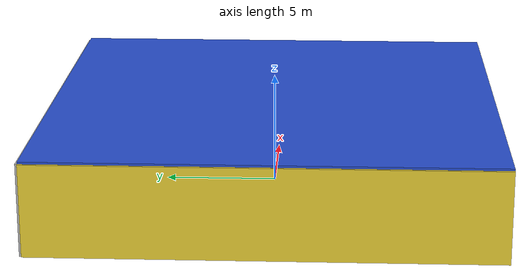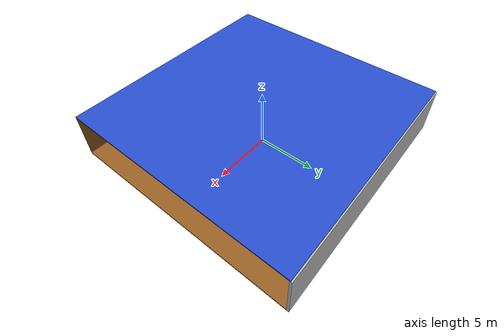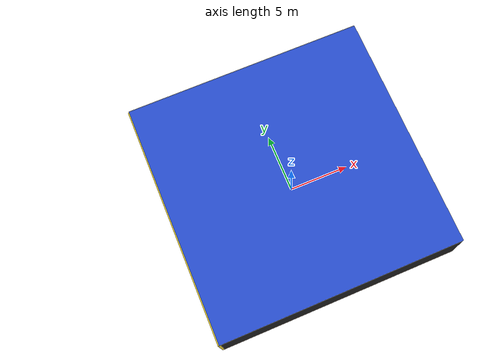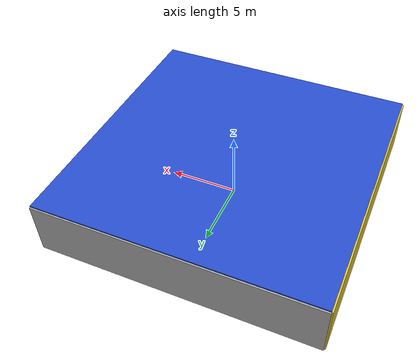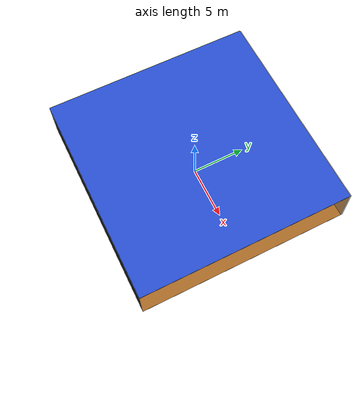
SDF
<sdf version="1.4">
 <world name="default">
  <physics type="ode">
   <max_step_size>0.001</max_step_size>
   <real_time_factor>1</real_time_factor>
   <real_time_update_rate>1000</real_time_update_rate>
   <gravity>0 0 -9.8</gravity>
  </physics>
  <scene><ambient>0.4 0.4 0.4 1</ambient><background>0.7 0.7 0.7 1</background><shadows>1</shadows></scene>
  <model name="Surrounding">
   <static>1</static>
   <link name="Ceiling">
    <collision name="Ceiling_Collision"><geometry><box><size>20 20 0.1</size></box></geometry></collision>
    <visual name="Ceiling_Visual">
     <geometry><box><size>20 20 0.1</size></box></geometry>
     <material>
      <script><uri>file://media/materials/scripts/gazebo.material</uri><name>Gazebo/BlueGlow</name></script>
     </material>
    </visual>
    <pose>0 0 4.05 0 0 0</pose>
   </link>
   <link name="Wall_South">
    <collision name="Wall_South_Collision">
     <geometry><box><size>20 0 4</size></box></geometry>
     <pose>0 0 2 0 -0 0</pose>
    </collision>
    <visual name="Wall_South_Visual">
     <pose>0 0 2 0 -0 0</pose>
     <geometry><box><size>20 0 4</size></box></geometry>
     <material>
      <script><uri>file://media/materials/scripts/gazebo.material</uri><name>Gazebo/FlatBlack</name></script>
     </material>
    </visual>
    <velocity_decay><linear>0</linear><angular>0</angular></velocity_decay>
    <pose>0 -10 0 0 -0 0</pose>
   </link>
   <link name="Wall_East">
    <collision name="Wall_21_Collision">
     <geometry><box><size>20 0 4</size></box></geometry>
     <pose>0 0 2 0 -0 0</pose>
    </collision>
    <visual name="Wall_21_Visual">
     <pose>0 0 2 0 -0 0</pose>
     <geometry><box><size>20 0 4</size></box></geometry>
     <material>
      <script>
       <uri>file://media/materials/scripts/gazebo.material</uri>
       <name>Gazebo/OrangeTransparent</name>
      </script>
     </material>
    </visual>
    <velocity_decay><linear>0</linear><angular>0</angular></velocity_decay>
    <pose>10 0 0 0 -0 1.5708</pose>
   </link>
   <link name="Wall_North">
    <collision name="Wall_22_Collision">
     <geometry><box><size>20 0.2 4</size></box></geometry>
     <pose>0 0 2 0 -0 0</pose>
    </collision>
    <visual name="Wall_22_Visual">
     <pose>0 0 2 0 -0 0</pose>
     <geometry><box><size>20 0.2 4</size></box></geometry>
     <material>
      <script><uri>file://media/materials/scripts/gazebo.material</uri><name>Gazebo/Pioneer2Body</name></script>
     </material>
    </visual>
    <velocity_decay><linear>0</linear><angular>0</angular></velocity_decay>
    <pose>0 10 0 0 -0 0</pose>
   </link>
   <link name="Wall_West">
    <collision name="Wall_23_Collision">
     <geometry><box><size>20 0.2 4</size></box></geometry>
     <pose>0 0 2 0 -0 0</pose>
    </collision>
    <visual name="Wall_23_Visual">
     <pose>0 0 2 0 -0 0</pose>
     <geometry><box><size>20 0.2 4</size></box></geometry>
     <material>
      <script><uri>file://media/materials/scripts/gazebo.material</uri><name>Gazebo/ZincYellow</name></script>
     </material>
    </visual>
    <velocity_decay><linear>0</linear><angular>0</angular></velocity_decay>
    <pose>-10 0 0 0 0 -1.5708</pose>
   </link>
   <link name="Ground_link">
    <collision name="collision">
     <pose>0 0 .05 0 -0 0</pose>
     <geometry><box><size>20 20 0.1</size></box></geometry>
    </collision>
    <visual name="visual">
     <pose>0 0 .05 0 -0 0</pose>
     <geometry><box><size>20 20 0.1</size></box></geometry>
     <material>
      <script><uri>file://media/materials/scripts/gazebo.material</uri><name>Gazebo/WoodPallet</name></script>
     </material>
    </visual>
   </link>
   <static>1</static>
  </model>
  <spherical_coordinates>
   <surface_model>EARTH_WGS84</surface_model>
   <latitude_deg>0</latitude_deg>
   <longitude_deg>0</longitude_deg>
   <elevation>0</elevation>
   <heading_deg>0</heading_deg>
  </spherical_coordinates>
  <light name="lightball_0" type="diffuse">
   <diffuse>0.8 0.8 0.8 1</diffuse>
   <specular>0.2 0.2 0.2 1</specular>
   <attenuation>
    <range>100</range>
    <constant>0.7</constant>
    <linear>0.01</linear>
    <quadratic>0.001</quadratic>
   </attenuation>
   <direction>-0.5 0.1 -0.9</direction>
   <pose>-9.94078709691 9.65006917884 0.874530494417 0 0 0</pose>
  </light>
  <light name="lightball_1" type="diffuse">
   <diffuse>0.8 0.8 0.8 1</diffuse>
   <specular>0.2 0.2 0.2 1</specular>
   <attenuation>
    <range>100</range>
    <constant>0.7</constant>
    <linear>0.01</linear>
    <quadratic>0.001</quadratic>
   </attenuation>
   <direction>-0.5 0.1 -0.9</direction>
   <pose>4.16867011236 -1.2308894668 0.980327937418 0 0 0</pose>
  </light>
  <light name="lightball_2" type="diffuse">
   <diffuse>0.8 0.8 0.8 1</diffuse>
   <specular>0.2 0.2 0.2 1</specular>
   <attenuation>
    <range>100</range>
    <constant>0.7</constant>
    <linear>0.01</linear>
    <quadratic>0.001</quadratic>
   </attenuation>
   <direction>-0.5 0.1 -0.9</direction>
   <pose>-2.47587232547 -4.83540088 1.57195780352 0 0 0</pose>
  </light>
  <light name="lightball_3" type="diffuse">
   <diffuse>0.8 0.8 0.8 1</diffuse>
   <specular>0.2 0.2 0.2 1</specular>
   <attenuation>
    <range>100</range>
    <constant>0.7</constant>
    <linear>0.01</linear>
    <quadratic>0.001</quadratic>
   </attenuation>
   <direction>-0.5 0.1 -0.9</direction>
   <pose>-7.82001617519 0.000489825190435 3.14950839059 0 0 0</pose>
  </light>
  <light name="lightball_4" type="diffuse">
   <diffuse>0.8 0.8 0.8 1</diffuse>
   <specular>0.2 0.2 0.2 1</specular>
   <attenuation>
    <range>100</range>
    <constant>0.7</constant>
    <linear>0.01</linear>
    <quadratic>0.001</quadratic>
   </attenuation>
   <direction>-0.5 0.1 -0.9</direction>
   <pose>-3.28629886174 -9.5459126138 1.5808244626 0 0 0</pose>
  </light>
  <light name="lightball_5" type="diffuse">
   <diffuse>0.8 0.8 0.8 1</diffuse>
   <specular>0.2 0.2 0.2 1</specular>
   <attenuation>
    <range>100</range>
    <constant>0.7</constant>
    <linear>0.01</linear>
    <quadratic>0.001</quadratic>
   </attenuation>
   <direction>-0.5 0.1 -0.9</direction>
   <pose>7.0106851296 -7.13291903719 2.29597237983 0 0 0</pose>
  </light>
  <light name="lightball_6" type="diffuse">
   <diffuse>0.8 0.8 0.8 1</diffuse>
   <specular>0.2 0.2 0.2 1</specular>
   <attenuation>
    <range>100</range>
    <constant>0.7</constant>
    <linear>0.01</linear>
    <quadratic>0.001</quadratic>
   </attenuation>
   <direction>-0.5 0.1 -0.9</direction>
   <pose>-5.58638877813 5.16168932564 3.13894201775 0 0 0</pose>
  </light>
  <light name="lightball_7" type="diffuse">
   <diffuse>0.8 0.8 0.8 1</diffuse>
   <specular>0.2 0.2 0.2 1</specular>
   <attenuation>
    <range>100</range>
    <constant>0.7</constant>
    <linear>0.01</linear>
    <quadratic>0.001</quadratic>
   </attenuation>
   <direction>-0.5 0.1 -0.9</direction>
   <pose>-9.02469552441 7.99895516386 1.74624212306 0 0 0</pose>
  </light>
  <light name="lightball_8" type="diffuse">
   <diffuse>0.8 0.8 0.8 1</diffuse>
   <specular>0.2 0.2 0.2 1</specular>
   <attenuation>
    <range>100</range>
    <constant>0.7</constant>
    <linear>0.01</linear>
    <quadratic>0.001</quadratic>
   </attenuation>
   <direction>-0.5 0.1 -0.9</direction>
   <pose>2.7645809117 4.3132451974 0.61478056757 0 0 0</pose>
  </light>
  <light name="lightball_9" type="diffuse">
   <diffuse>0.8 0.8 0.8 1</diffuse>
   <specular>0.2 0.2 0.2 1</specular>
   <attenuation>
    <range>100</range>
    <constant>0.7</constant>
    <linear>0.01</linear>
    <quadratic>0.001</quadratic>
   </attenuation>
   <direction>-0.5 0.1 -0.9</direction>
   <pose>-4.08883341254 2.34209620118 3.65209983824 0 0 0</pose>
  </light>
  <light name="lightball_10" type="diffuse">
   <diffuse>0.8 0.8 0.8 1</diffuse>
   <specular>0.2 0.2 0.2 1</specular>
   <attenuation>
    <range>100</range>
    <constant>0.7</constant>
    <linear>0.01</linear>
    <quadratic>0.001</quadratic>
   </attenuation>
   <direction>-0.5 0.1 -0.9</direction>
   <pose>4.97295586799 7.32811063198 1.1265404153 0 0 0</pose>
  </light>
  <light name="lightball_11" type="diffuse">
   <diffuse>0.8 0.8 0.8 1</diffuse>
   <specular>0.2 0.2 0.2 1</specular>
   <attenuation>
    <range>100</range>
    <constant>0.7</constant>
    <linear>0.01</linear>
    <quadratic>0.001</quadratic>
   </attenuation>
   <direction>-0.5 0.1 -0.9</direction>
   <pose>4.82952484329 2.89748841806 0.91678310396 0 0 0</pose>
  </light>
  <light name="lightball_12" type="diffuse">
   <diffuse>0.8 0.8 0.8 1</diffuse>
   <specular>0.2 0.2 0.2 1</specular>
   <attenuation>
    <range>100</range>
    <constant>0.7</constant>
    <linear>0.01</linear>
    <quadratic>0.001</quadratic>
   </attenuation>
   <direction>-0.5 0.1 -0.9</direction>
   <pose>-4.41822995926 -8.85591899169 0.699682132546 0 0 0</pose>
  </light>
  <include><uri>model://table</uri><pose>-8.22179199392 -5.23906082302 0 0 0 3.09789787555</pose></include>
  <include><uri>model://table</uri><pose>-6.88683155475 -2.0458686715 0 0 0 0.020635684673</pose></include>
  <include>
   <uri>model://robocup_3Dsim_goal</uri>
   <pose>-2.69459321747 2.5897767474 0 0 0 1.22299643764</pose>
  </include>
  <include>
   <uri>model://construction_cone</uri>
   <pose>4.93514707501 -2.19755830195 0 0 0 2.59583338078</pose>
  </include>
  <include><uri>model://cabinet</uri><pose>3.63720287027 3.6086032661 0 0 0 1.2292727841</pose></include>
  <include>
   <uri>model://construction_cone</uri>
   <pose>7.88169897347 6.40094979122 0 0 0 2.84514621649</pose>
  </include>
 </world>
</sdf>

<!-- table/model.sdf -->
<sdf version="1.5">
  <model name="table">
    <static>true</static>
    <link name="link">
      <collision name="surface">
        <pose>0 0 1.0 0 0 0</pose>
        <geometry>
          <box>
            <size>1.5 0.8 0.03</size>
          </box>
        </geometry>
        <surface>
          <friction>
            <ode>
              <mu>0.6</mu>
              <mu2>0.6</mu2>
            </ode>
          </friction>
        </surface>
      </collision>
      <visual name="visual1">
        <pose>0 0 1.0 0 0 0</pose>
        <geometry>
          <box>
            <size>1.5 0.8 0.03</size>
          </box>
        </geometry>
        <material>
          <script>
            <uri>model://media/materials/scripts/gazebo.material</uri>
            <name>Gazebo/Wood</name>
          </script>
        </material>
      </visual>
      <collision name="front_left_leg">
        <pose>0.68 0.38 0.5 0 0 0</pose>
        <geometry>
          <cylinder>
            <radius>0.02</radius>
            <length>1.0</length>
          </cylinder>
        </geometry>
      </collision>
      <visual name="front_left_leg">
        <pose>0.68 0.38 0.5 0 0 0</pose>
        <geometry>
          <cylinder>
            <radius>0.02</radius>
            <length>1.0</length>
          </cylinder>
        </geometry>
        <material>
          <script>
            <uri>model://media/materials/scripts/gazebo.material</uri>
            <name>Gazebo/Grey</name>
          </script>
        </material>
      </visual>
      <collision name="front_right_leg">
        <pose>0.68 -0.38 0.5 0 0 0</pose>
        <geometry>
          <cylinder>
            <radius>0.02</radius>
            <length>1.0</length>
          </cylinder>
        </geometry>
      </collision>
      <visual name="front_right_leg">
        <pose>0.68 -0.38 0.5 0 0 0</pose>
        <geometry>
          <cylinder>
            <radius>0.02</radius>
            <length>1.0</length>
          </cylinder>
        </geometry>
        <material>
          <script>
            <uri>model://media/materials/scripts/gazebo.material</uri>
            <name>Gazebo/Grey</name>
          </script>
        </material>
      </visual>
      <collision name="back_right_leg">
        <pose>-0.68 -0.38 0.5 0 0 0</pose>
        <geometry>
          <cylinder>
            <radius>0.02</radius>
            <length>1.0</length>
          </cylinder>
        </geometry>
      </collision>
      <visual name="back_right_leg">
        <pose>-0.68 -0.38 0.5 0 0 0</pose>
        <geometry>
          <cylinder>
            <radius>0.02</radius>
            <length>1.0</length>
          </cylinder>
        </geometry>
        <material>
          <script>
            <uri>model://media/materials/scripts/gazebo.material</uri>
            <name>Gazebo/Grey</name>
          </script>
        </material>
      </visual>
      <collision name="back_left_leg">
        <pose>-0.68 0.38 0.5 0 0 0</pose>
        <geometry>
          <cylinder>
            <radius>0.02</radius>
            <length>1.0</length>
          </cylinder>
        </geometry>
      </collision>
      <visual name="back_left_leg">
        <pose>-0.68 0.38 0.5 0 0 0</pose>
        <geometry>
          <cylinder>
            <radius>0.02</radius>
            <length>1.0</length>
          </cylinder>
        </geometry>
        <material>
          <script>
            <uri>model://media/materials/scripts/gazebo.material</uri>
            <name>Gazebo/Grey</name>
          </script>
        </material>
      </visual>
    </link>
  </model>
</sdf>

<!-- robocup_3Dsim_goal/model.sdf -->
<sdf version="1.5">
  <model name="robocup_3d_goal">
    <static>true</static>
    <link name="left_post">
      <pose>0 1.05 0.45 0 0 0</pose>
      <collision name="collision">
        <geometry>
          <cylinder>
            <radius>0.05</radius>
            <length>0.9</length>
          </cylinder>
        </geometry>
      </collision>
      <visual name="visual">
        <geometry>
          <cylinder>
            <radius>0.05</radius>
            <length>0.9</length>
          </cylinder>
        </geometry>
        <material>
          <script>
            <uri>file://media/materials/scripts/gazebo.material</uri>
            <name>Gazebo/ZincYellow</name>
          </script>
        </material>
      </visual>
    </link>
    <link name="left_support_horiz_lower">
      <pose>0.30 1.05 0.01 0 0 0</pose>
      <collision name="collision">
        <geometry>
          <box>
            <size>0.50 0.02 0.02</size>
          </box>
        </geometry>
      </collision>
      <visual name="visual">
        <geometry>
          <box>
            <size>0.50 0.02 0.02</size>
          </box>
        </geometry>
        <material>
          <script>
            <uri>file://media/materials/scripts/gazebo.material</uri>
            <name>Gazebo/White</name>
          </script>
        </material>
      </visual>
    </link>
    <link name="left_support_horiz_upper">
      <pose>0.30 1.05 0.79 0 0 0</pose>
      <collision name="collision">
        <geometry>
          <box>
            <size>0.50 0.02 0.02</size>
          </box>
        </geometry>
      </collision>
      <visual name="visual">
        <geometry>
          <box>
            <size>0.50 0.02 0.02</size>
          </box>
        </geometry>
        <material>
          <script>
            <uri>file://media/materials/scripts/gazebo.material</uri>
            <name>Gazebo/White</name>
          </script>
        </material>
      </visual>
    </link>
    <link name="left_support_vertical">
      <pose>0.56 1.05 0.4 0 1.5708 0</pose>
      <collision name="collision">
        <geometry>
          <box>
            <size>0.80 0.02 0.02</size>
          </box>
        </geometry>
      </collision>
      <visual name="visual">
        <geometry>
          <box>
            <size>0.80 0.02 0.02</size>
          </box>
        </geometry>
        <material>
          <script>
            <uri>file://media/materials/scripts/gazebo.material</uri>
            <name>Gazebo/White</name>
          </script>
        </material>
      </visual>
    </link>
    <link name="right_support_horiz_lower">
      <pose>0.30 -1.05 0.01 0 0 0</pose>
      <collision name="collision">
        <geometry>
          <box>
            <size>0.50 0.02 0.02</size>
          </box>
        </geometry>
      </collision>
      <visual name="visual">
        <geometry>
          <box>
            <size>0.50 0.02 0.02</size>
          </box>
        </geometry>
        <material>
          <script>
            <uri>file://media/materials/scripts/gazebo.material</uri>
            <name>Gazebo/White</name>
          </script>
        </material>
      </visual>
    </link>
    <link name="right_support_horiz_upper">
      <pose>0.30 -1.05 0.79 0 0 0</pose>
      <collision name="collision">
        <geometry>
          <box>
            <size>0.50 0.02 0.02</size>
          </box>
        </geometry>
      </collision>
      <visual name="visual">
        <geometry>
          <box>
            <size>0.50 0.02 0.02</size>
          </box>
        </geometry>
        <material>
          <script>
            <uri>file://media/materials/scripts/gazebo.material</uri>
            <name>Gazebo/White</name>
          </script>
        </material>
      </visual>
    </link>
    <link name="right_support_vertical">
      <pose>0.56 -1.05 0.4 0 1.5708 0</pose>
      <collision name="collision">
        <geometry>
          <box>
            <size>0.80 0.02 0.02</size>
          </box>
        </geometry>
      </collision>
      <visual name="visual">
        <geometry>
          <box>
            <size>0.80 0.02 0.02</size>
          </box>
        </geometry>
        <material>
          <script>
            <uri>file://media/materials/scripts/gazebo.material</uri>
            <name>Gazebo/White</name>
          </script>
        </material>
      </visual>
    </link>
    <link name="center_support_horiz_lower">
      <pose>0.56 0 0.01 0 1.5708 0</pose>
      <collision name="collision">
        <geometry>
          <box>
            <size>0.02 2.08 0.02</size>
          </box>
        </geometry>
      </collision>
      <visual name="visual">
        <geometry>
          <box>
            <size>0.02 2.08 0.02</size>
          </box>
        </geometry>
        <material>
          <script>
            <uri>file://media/materials/scripts/gazebo.material</uri>
            <name>Gazebo/White</name>
          </script>
        </material>
      </visual>
    </link>
    <link name="center_support_horiz_upper">
      <pose>0.56 0 0.79 0 1.5708 0</pose>
      <collision name="collision">
        <geometry>
          <box>
            <size>0.02 2.08 0.02</size>
          </box>
        </geometry>
      </collision>
      <visual name="visual">
        <geometry>
          <box>
            <size>0.02 2.08 0.02</size>
          </box>
        </geometry>
        <material>
          <script>
            <uri>file://media/materials/scripts/gazebo.material</uri>
            <name>Gazebo/White</name>
          </script>
        </material>
      </visual>
    </link>
    <link name="right_post">
      <pose>0 -1.05 0.45 0 0 0</pose>
      <collision name="collision">
        <geometry>
          <cylinder>
            <radius>0.05</radius>
            <length>0.9</length>
          </cylinder>
        </geometry>
      </collision>
      <visual name="visual">
        <geometry>
          <cylinder>
            <radius>0.05</radius>
            <length>0.9</length>
          </cylinder>
        </geometry>
        <material>
          <script>
            <uri>file://media/materials/scripts/gazebo.material</uri>
            <name>Gazebo/ZincYellow</name>
          </script>
        </material>
      </visual>
    </link>
    <link name="crossbar">
      <pose>0 0 0.85 1.57 1.57 0</pose>
      <collision name="collision">
        <geometry>
          <cylinder>
            <radius>0.05</radius>
            <length>2.0</length>
          </cylinder>
        </geometry>
      </collision>
      <visual name="visual">
        <geometry>
          <cylinder>
            <radius>0.05</radius>
            <length>2.0</length>
          </cylinder>
        </geometry>
        <material>
          <script>
            <uri>file://media/materials/scripts/gazebo.material</uri>
            <name>Gazebo/ZincYellow</name>
          </script>
        </material>
      </visual>
    </link>
    <link name="center_net">
      <pose>0.56 0 0.40 0 0 0</pose>
      <collision name="collision">
        <geometry>
          <box>
            <size>0.01 2.1 0.80</size>
          </box>
        </geometry>
      </collision>
      <visual name="visual">
        <geometry>
          <box>
            <size>0.01 2.1 0.80</size>
          </box>
        </geometry>
        <material>
          <script>
            <uri>model://../model_source/models/robocup09_spl_field/materials/scripts/</uri>
            <uri>model://../model_source/models/robocup09_spl_field/materials/textures/</uri>
            <name>RoboCup/Net</name>
          </script>
        </material>
      </visual>
    </link>
    <link name="left_net">
      <pose>0.30 1.05 0.40 0 0 0</pose>
      <collision name="collision">
        <geometry>
          <box>
            <size>0.50 0.01 0.76</size>
          </box>
        </geometry>
      </collision>
      <visual name="visual">
        <geometry>
          <box>
            <size>0.50 0.01 0.76</size>
          </box>
        </geometry>
        <material>
          <script>
            <uri>model://../model_source/models/robocup09_spl_field/materials/scripts/</uri>
            <uri>model://../model_source/models/robocup09_spl_field/materials/textures/</uri>
            <name>RoboCup/Net</name>
          </script>
        </material>
      </visual>
    </link>
    <link name="right_net">
      <pose>0.30 -1.05 0.40 0 0 0</pose>
      <collision name="collision">
        <geometry>
          <box>
            <size>0.50 0.01 0.76</size>
          </box>
        </geometry>
      </collision>
      <visual name="visual">
        <geometry>
          <box>
            <size>0.50 0.01 0.76</size>
          </box>
        </geometry>
        <material>
          <script>
            <uri>model://../model_source/models/robocup09_spl_field/materials/scripts/</uri>
            <uri>model://../model_source/models/robocup09_spl_field/materials/textures/</uri>
            <name>RoboCup/Net</name>
          </script>
        </material>
      </visual>
    </link>
  </model>
</sdf>

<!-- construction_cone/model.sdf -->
<sdf version="1.5">
  <model name="Construction Cone">
    <link name="link">
      <collision name="collision">
        <geometry>
          <mesh>
            <scale>10 10 10</scale>
            <uri>file://isr-testbed/construction_cone/meshes/construction_cone.dae</uri>
          </mesh>
        </geometry>
      </collision>
      <visual name="visual">
        <geometry>
          <mesh>
            <scale>10 10 10</scale>
            <uri>file://isr-testbed/construction_cone/meshes/construction_cone.dae</uri>
          </mesh>
        </geometry>
      </visual>
    </link>
  </model>
</sdf>

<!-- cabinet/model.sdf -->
<sdf version="1.5">
  <model name="cabinet">
    <static>true</static>
    <link name="cabinet_bottom_plate">
      <inertial>
        <pose>0 0 -1 0 0 0</pose>
        <inertia>
          <ixx>2.050000</ixx>
          <ixy>0</ixy>
          <ixz>0</ixz>
          <iyy>2.050000</iyy>
          <iyz>0</iyz>
          <izz>2.050000</izz>
        </inertia>
        <mass>25.000000</mass>
      </inertial>
      <collision name="cabinet_bottom_plate_geom">
        <pose>0 0 0.010000 0 0 0</pose>
        <geometry>
          <box>
            <size>0.450000 0.450000 0.020000</size>
          </box>
        </geometry>
      </collision>
      <visual name="cabinet_bottom_plate_geom_visual">
        <pose>0 0 0.010000 0 0 0</pose>
        <geometry>
          <box>
            <size>0.450000 0.450000 0.020000</size>
          </box>
        </geometry>
        <material>
          <script>
            <uri>model://media/materials/scripts/gazebo.material</uri>
            <name>Gazebo/Wood</name>
          </script>
        </material>
      </visual>
      <collision name="cabinet_bottom_plate_geom_cabinet_back_plate">
        <pose>0.235000 0 0.510000 0 0 0</pose>
        <geometry>
          <box>
            <size>0.020000 0.450000 1.020000</size>
          </box>
        </geometry>
      </collision>
      <visual name="cabinet_bottom_plate_geom_cabinet_back_plate_visual">
        <pose>0.235000 0 0.510000 0 0 0</pose>
        <geometry>
          <box>
            <size>0.020000 0.450000 1.020000</size>
          </box>
        </geometry>
        <material>
          <script>
            <uri>model://media/materials/scripts/gazebo.material</uri>
            <name>Gazebo/Wood</name>
          </script>
        </material>
      </visual>
      <collision name="cabinet_bottom_plate_geom_cabinet_left_plate">
        <pose>0 0.235000 0.510000 0 0 0</pose>
        <geometry>
          <box>
            <size>0.450000 0.020000 1.020000</size>
          </box>
        </geometry>
      </collision>
      <visual name="cabinet_bottom_plate_geom_cabinet_left_plate_visual">
        <pose>0 0.235000 0.510000 0 0 0</pose>
        <geometry>
          <box>
            <size>0.450000 0.020000 1.020000</size>
          </box>
        </geometry>
        <material>
          <script>
            <uri>model://media/materials/scripts/gazebo.material</uri>
            <name>Gazebo/Wood</name>
          </script>
        </material>
      </visual>
      <collision name="cabinet_bottom_plate_geom_cabinet_middle_plate">
        <pose>0 0 0.510000 0 0 0</pose>
        <geometry>
          <box>
            <size>0.450000 0.450000 0.020000</size>
          </box>
        </geometry>
      </collision>
      <visual name="cabinet_bottom_plate_geom_cabinet_middle_plate_visual">
        <pose>0 0 0.510000 0 0 0</pose>
        <geometry>
          <box>
            <size>0.450000 0.450000 0.020000</size>
          </box>
        </geometry>
        <material>
          <script>
            <uri>model://media/materials/scripts/gazebo.material</uri>
            <name>Gazebo/Wood</name>
          </script>
        </material>
      </visual>
      <collision name="cabinet_bottom_plate_geom_cabinet_right_plate">
        <pose>0 -0.235000 0.510000 0 0 0</pose>
        <geometry>
          <box>
            <size>0.450000 0.020000 1.020000</size>
          </box>
        </geometry>
      </collision>
      <visual name="cabinet_bottom_plate_geom_cabinet_right_plate_visual">
        <pose>0 -0.235000 0.510000 0 0 0</pose>
        <geometry>
          <box>
            <size>0.450000 0.020000 1.020000</size>
          </box>
        </geometry>
        <material>
          <script>
            <uri>model://media/materials/scripts/gazebo.material</uri>
            <name>Gazebo/Wood</name>
          </script>
        </material>
      </visual>
      <collision name="cabinet_bottom_plate_geom_cabinet_top_plate">
        <pose>0 0 1.010000 0 0 0</pose>
        <geometry>
          <box>
            <size>0.450000 0.450000 0.020000</size>
          </box>
        </geometry>
      </collision>
      <visual name="cabinet_bottom_plate_geom_cabinet_top_plate_visual">
        <pose>0 0 1.010000 0 0 0</pose>
        <geometry>
          <box>
            <size>0.450000 0.450000 0.020000</size>
          </box>
        </geometry>
        <material>
          <script>
            <uri>model://media/materials/scripts/gazebo.material</uri>
            <name>Gazebo/Wood</name>
          </script>
        </material>
      </visual>
    </link>
  </model>
</sdf>
